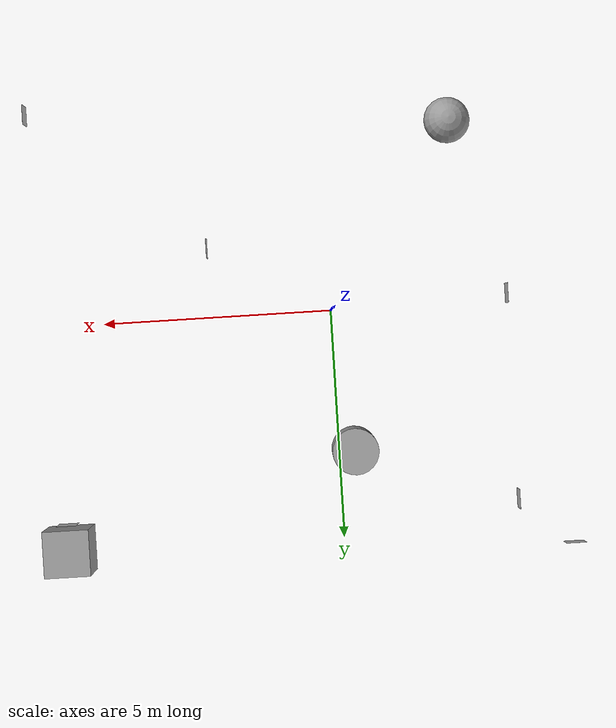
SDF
<?xml version='1.0'?>
<sdf version='1.7'>
  <model name='mapa'>
    <link name='link_0'>
      <inertial>
        <mass>1</mass>
        <inertia>
          <ixx>0.166667</ixx>
          <ixy>0</ixy>
          <ixz>0</ixz>
          <iyy>0.166667</iyy>
          <iyz>0</iyz>
          <izz>0.166667</izz>
        </inertia>
      </inertial>
      <pose>5.98387 4.87912 0.479891 0 -0 0</pose>
      <visual name='visual'>
        <pose>0 0 0 0 -0 0</pose>
        <geometry>
          <box>
            <size>1 1 1</size>
          </box>
        </geometry>
        <material>
          <lighting>1</lighting>
          <script>
            <uri>file://media/materials/scripts/gazebo.material</uri>
            <name>Gazebo/Grey</name>
          </script>
          <shader type='pixel'/>
        </material>
        <transparency>0</transparency>
        <cast_shadows>1</cast_shadows>
      </visual>
      <collision name='collision'>
        <laser_retro>0</laser_retro>
        <max_contacts>10</max_contacts>
        <pose>0 0 0 0 -0 0</pose>
        <geometry>
          <box>
            <size>1 1 1</size>
          </box>
        </geometry>
        <surface>
          <friction>
            <ode>
              <mu>1</mu>
              <mu2>1</mu2>
              <fdir1>0 0 0</fdir1>
              <slip1>0</slip1>
              <slip2>0</slip2>
            </ode>
            <torsional>
              <coefficient>1</coefficient>
              <patch_radius>0</patch_radius>
              <surface_radius>0</surface_radius>
              <use_patch_radius>1</use_patch_radius>
              <ode>
                <slip>0</slip>
              </ode>
            </torsional>
          </friction>
          <bounce>
            <restitution_coefficient>0</restitution_coefficient>
            <threshold>1e+06</threshold>
          </bounce>
          <contact>
            <collide_without_contact>0</collide_without_contact>
            <collide_without_contact_bitmask>1</collide_without_contact_bitmask>
            <collide_bitmask>1</collide_bitmask>
            <ode>
              <soft_cfm>0</soft_cfm>
              <soft_erp>0.2</soft_erp>
              <kp>1e+13</kp>
              <kd>1</kd>
              <max_vel>0.01</max_vel>
              <min_depth>0</min_depth>
            </ode>
            <bullet>
              <split_impulse>1</split_impulse>
              <split_impulse_penetration_threshold>-0.01</split_impulse_penetration_threshold>
              <soft_cfm>0</soft_cfm>
              <soft_erp>0.2</soft_erp>
              <kp>1e+13</kp>
              <kd>1</kd>
            </bullet>
          </contact>
        </surface>
      </collision>
    </link>
    <link name='link_1'>
      <inertial>
        <mass>1</mass>
        <inertia>
          <ixx>0.1</ixx>
          <ixy>0</ixy>
          <ixz>0</ixz>
          <iyy>0.1</iyy>
          <iyz>0</iyz>
          <izz>0.1</izz>
        </inertia>
      </inertial>
      <pose>-2.75749 -3.97841 0.479891 0 -0 0</pose>
      <visual name='visual'>
        <pose>0 0 0 0 -0 0</pose>
        <geometry>
          <sphere>
            <radius>0.5</radius>
          </sphere>
        </geometry>
        <material>
          <lighting>1</lighting>
          <script>
            <uri>file://media/materials/scripts/gazebo.material</uri>
            <name>Gazebo/Grey</name>
          </script>
          <shader type='pixel'/>
        </material>
        <transparency>0</transparency>
        <cast_shadows>1</cast_shadows>
      </visual>
      <collision name='collision'>
        <laser_retro>0</laser_retro>
        <max_contacts>10</max_contacts>
        <pose>0 0 0 0 -0 0</pose>
        <geometry>
          <sphere>
            <radius>0.5</radius>
          </sphere>
        </geometry>
        <surface>
          <friction>
            <ode>
              <mu>1</mu>
              <mu2>1</mu2>
              <fdir1>0 0 0</fdir1>
              <slip1>0</slip1>
              <slip2>0</slip2>
            </ode>
            <torsional>
              <coefficient>1</coefficient>
              <patch_radius>0</patch_radius>
              <surface_radius>0</surface_radius>
              <use_patch_radius>1</use_patch_radius>
              <ode>
                <slip>0</slip>
              </ode>
            </torsional>
          </friction>
          <bounce>
            <restitution_coefficient>0</restitution_coefficient>
            <threshold>1e+06</threshold>
          </bounce>
          <contact>
            <collide_without_contact>0</collide_without_contact>
            <collide_without_contact_bitmask>1</collide_without_contact_bitmask>
            <collide_bitmask>1</collide_bitmask>
            <ode>
              <soft_cfm>0</soft_cfm>
              <soft_erp>0.2</soft_erp>
              <kp>1e+13</kp>
              <kd>1</kd>
              <max_vel>0.01</max_vel>
              <min_depth>0</min_depth>
            </ode>
            <bullet>
              <split_impulse>1</split_impulse>
              <split_impulse_penetration_threshold>-0.01</split_impulse_penetration_threshold>
              <soft_cfm>0</soft_cfm>
              <soft_erp>0.2</soft_erp>
              <kp>1e+13</kp>
              <kd>1</kd>
            </bullet>
          </contact>
        </surface>
      </collision>
    </link>
    <link name='link_3'>
      <inertial>
        <mass>1</mass>
        <inertia>
          <ixx>0.145833</ixx>
          <ixy>0</ixy>
          <ixz>0</ixz>
          <iyy>0.145833</iyy>
          <iyz>0</iyz>
          <izz>0.125</izz>
        </inertia>
      </inertial>
      <pose>-0.340415 3.0635 0.479891 0 -0 0</pose>
      <visual name='visual'>
        <pose>0 0 0 0 -0 0</pose>
        <geometry>
          <cylinder>
            <radius>0.5</radius>
            <length>1</length>
          </cylinder>
        </geometry>
        <material>
          <lighting>1</lighting>
          <script>
            <uri>file://media/materials/scripts/gazebo.material</uri>
            <name>Gazebo/Grey</name>
          </script>
          <shader type='pixel'/>
        </material>
        <transparency>0</transparency>
        <cast_shadows>1</cast_shadows>
      </visual>
      <collision name='collision'>
        <laser_retro>0</laser_retro>
        <max_contacts>10</max_contacts>
        <pose>0 0 0 0 -0 0</pose>
        <geometry>
          <cylinder>
            <radius>0.5</radius>
            <length>1</length>
          </cylinder>
        </geometry>
        <surface>
          <friction>
            <ode>
              <mu>1</mu>
              <mu2>1</mu2>
              <fdir1>0 0 0</fdir1>
              <slip1>0</slip1>
              <slip2>0</slip2>
            </ode>
            <torsional>
              <coefficient>1</coefficient>
              <patch_radius>0</patch_radius>
              <surface_radius>0</surface_radius>
              <use_patch_radius>1</use_patch_radius>
              <ode>
                <slip>0</slip>
              </ode>
            </torsional>
          </friction>
          <bounce>
            <restitution_coefficient>0</restitution_coefficient>
            <threshold>1e+06</threshold>
          </bounce>
          <contact>
            <collide_without_contact>0</collide_without_contact>
            <collide_without_contact_bitmask>1</collide_without_contact_bitmask>
            <collide_bitmask>1</collide_bitmask>
            <ode>
              <soft_cfm>0</soft_cfm>
              <soft_erp>0.2</soft_erp>
              <kp>1e+13</kp>
              <kd>1</kd>
              <max_vel>0.01</max_vel>
              <min_depth>0</min_depth>
            </ode>
            <bullet>
              <split_impulse>1</split_impulse>
              <split_impulse_penetration_threshold>-0.01</split_impulse_penetration_threshold>
              <soft_cfm>0</soft_cfm>
              <soft_erp>0.2</soft_erp>
              <kp>1e+13</kp>
              <kd>1</kd>
            </bullet>
          </contact>
        </surface>
      </collision>
    </link>
    <model name='qr_qr1'>
      <static>1</static>
      <link name='qr_qr1_link'>
        <pose>0 0 0.001 0 -0 1.5708</pose>
        <visual name='visual_qr_qr1'>
          <cast_shadows>0</cast_shadows>
          <geometry>
            <box>
              <size>0.44 0.44 0.001</size>
            </box>
          </geometry>
          <material>
            <script>
              <uri>model://qr_qr1/materials/scripts</uri>
              <uri>model://qr_qr1/materials/textures</uri>
              <name>qr_qr1/qr_qr1</name>
            </script>
          </material>
        </visual>
      </link>
      <pose>-3.86502 -0.156346 0.259007 0 1.54466 0</pose>
    </model>
    <model name='qr_qr2'>
      <static>1</static>
      <link name='qr_qr2_link'>
        <pose>0 0 0.001 0 -0 1.5708</pose>
        <visual name='visual_qr_qr2'>
          <cast_shadows>0</cast_shadows>
          <geometry>
            <box>
              <size>0.44 0.44 0.001</size>
            </box>
          </geometry>
          <material>
            <script>
              <uri>model://qr_qr2/materials/scripts</uri>
              <uri>model://qr_qr2/materials/textures</uri>
              <name>qr_qr2/qr_qr2</name>
            </script>
          </material>
        </visual>
      </link>
      <pose>2.63888 -1.52403 0.200317 3.14159 1.56629 3.14159</pose>
    </model>
    <model name='qr_qr3'>
      <static>1</static>
      <link name='qr_qr3_link'>
        <pose>0 0 0.001 0 -0 1.5708</pose>
        <visual name='visual_qr_qr3'>
          <cast_shadows>0</cast_shadows>
          <geometry>
            <box>
              <size>0.44 0.44 0.001</size>
            </box>
          </geometry>
          <material>
            <script>
              <uri>model://qr_qr3/materials/scripts</uri>
              <uri>model://qr_qr3/materials/textures</uri>
              <name>qr_qr3/qr_qr3</name>
            </script>
          </material>
        </visual>
      </link>
      <pose>-5.02603 5.37066 0.303021 1.59577 -0 0</pose>
    </model>
    <model name='qr_qr4'>
      <static>1</static>
      <link name='qr_qr4_link'>
        <pose>0 0 0.001 0 -0 1.5708</pose>
        <visual name='visual_qr_qr4'>
          <cast_shadows>0</cast_shadows>
          <geometry>
            <box>
              <size>0.44 0.44 0.001</size>
            </box>
          </geometry>
          <material>
            <script>
              <uri>model://qr_qr4/materials/scripts</uri>
              <uri>model://qr_qr4/materials/textures</uri>
              <name>qr_qr4/qr_qr4</name>
            </script>
          </material>
        </visual>
      </link>
      <pose>-3.86435 4.357 0.234224 0 1.55931 0</pose>
    </model>
    <model name='qr_qr5'>
      <static>1</static>
      <link name='qr_qr5_link'>
        <pose>0 0 0.001 0 -0 1.5708</pose>
        <visual name='visual_qr_qr5'>
          <cast_shadows>0</cast_shadows>
          <geometry>
            <box>
              <size>0.44 0.44 0.001</size>
            </box>
          </geometry>
          <material>
            <script>
              <uri>model://qr_qr5/materials/scripts</uri>
              <uri>model://qr_qr5/materials/textures</uri>
              <name>qr_qr5/qr_qr5</name>
            </script>
          </material>
        </visual>
      </link>
      <pose>6.04456 4.34587 0.188357 1.55434 -0 0</pose>
    </model>
    <model name='qr_qr6'>
      <static>1</static>
      <link name='qr_qr6_link'>
        <pose>0 0 0.001 0 -0 1.5708</pose>
        <visual name='visual_qr_qr6'>
          <cast_shadows>0</cast_shadows>
          <geometry>
            <box>
              <size>0.44 0.44 0.001</size>
            </box>
          </geometry>
          <material>
            <script>
              <uri>model://qr_qr6/materials/scripts</uri>
              <uri>model://qr_qr6/materials/textures</uri>
              <name>qr_qr6/qr_qr6</name>
            </script>
          </material>
        </visual>
      </link>
      <pose>6.4476 -4.67237 0.246555 0 -1.54227 0</pose>
    </model>
    <static>0</static>
    <allow_auto_disable>1</allow_auto_disable>
  </model>
</sdf>
